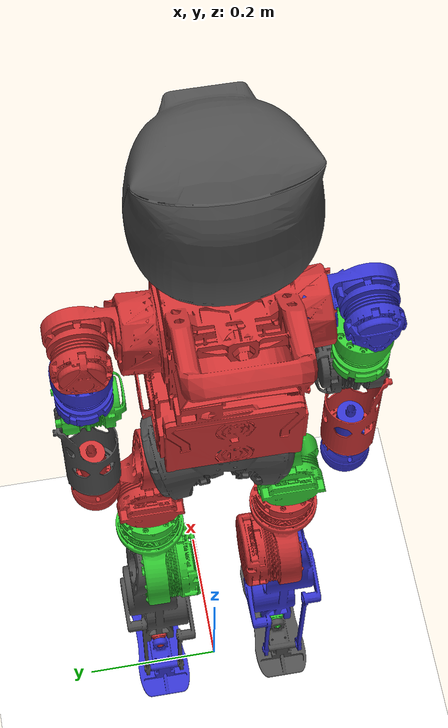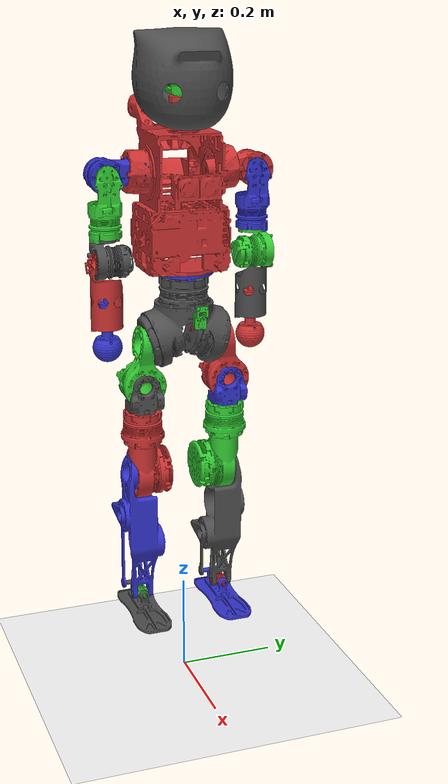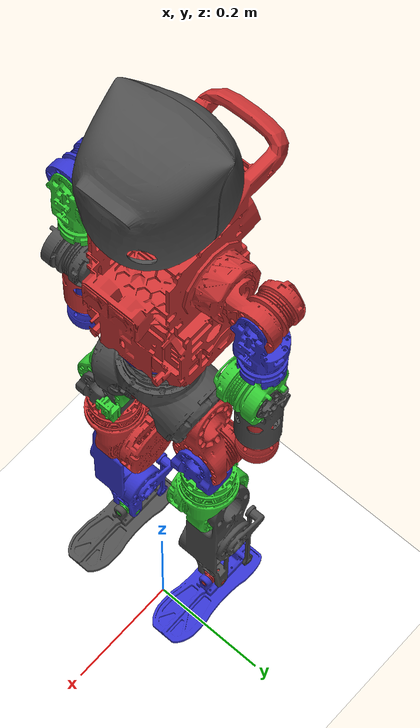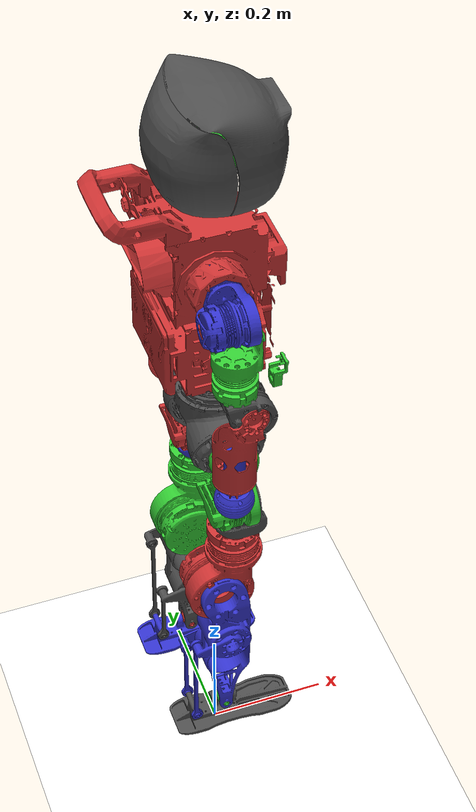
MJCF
<mujoco model="GR3Mini">
    <compiler angle="radian" meshdir="../meshes" autolimits="true"/>

    <default>
        <default class="GR3Mini">
            <geom group="2" type="mesh" contype="0" conaffinity="0"/>
            <joint type="hinge" armature="0.01" damping="0.01" frictionloss="0.01"/>

            <default class="collision">
                <geom group="3" rgba="0.7 0.7 0.7 0.5" contype="1" conaffinity="1"/>
            </default>

            <default class="motor_140E">
                <motor ctrllimited="true" ctrlrange="-140 140" gear="1"/>
            </default>
            <default class="motor_110E">
                <motor ctrllimited="true" ctrlrange="-110 110" gear="1"/>
            </default>
            <default class="motor_42E">
                <motor ctrllimited="true" ctrlrange="-42 42" gear="1"/>
            </default>
            <default class="motor_28E">
                <motor ctrllimited="true" ctrlrange="-28.5 28.5" gear="1"/>
            </default>
            <default class="motor_11E">
                <motor ctrllimited="true" ctrlrange="-11 11" gear="1"/>
            </default>
        </default>
    </default>

    <asset>
        <texture type="skybox" builtin="gradient" rgb1=".4 .5 .6" rgb2="0 0 0" width="800" height="800"/>
        <texture type="2d" name="groundplane" builtin="checker" mark="edge" rgb1="1 1 1" rgb2="1 1 1" markrgb="0 0 0" width="300" height="300"/>
        <material name="groundplane" texture="groundplane" texuniform="true" texrepeat="5 5" reflectance="0"/>

        <material name="base_material" rgba="0.3 0.3 0.3 1.0"/>
        <material name="link_material" rgba="0.8 0.2 0.2 1.0"/>
        <material name="blue_material" rgba="0.2 0.2 0.8 1.0"/>
        <material name="green_material" rgba="0.2 0.8 0.2 1.0"/>

        <!-- base -->
        <mesh name="base_link" file="base_link.STL"/>
        <mesh name="imu_link" file="imu_link.STL"/>

        <!-- left leg -->
        <mesh name="left_thigh_pitch_link" file="left_thigh_pitch_link.STL"/>
        <mesh name="left_thigh_roll_link" file="left_thigh_roll_link.STL"/>
        <mesh name="left_thigh_yaw_link" file="left_thigh_yaw_link.STL"/>
        <mesh name="left_shank_pitch_link" file="left_shank_pitch_link.STL"/>
        <mesh name="left_foot_pitch_link" file="left_foot_pitch_link.STL"/>
        <mesh name="left_foot_roll_link" file="left_foot_roll_link.STL"/>

        <!-- right leg -->
        <mesh name="right_thigh_pitch_link" file="right_thigh_pitch_link.STL"/>
        <mesh name="right_thigh_roll_link" file="right_thigh_roll_link.STL"/>
        <mesh name="right_thigh_yaw_link" file="right_thigh_yaw_link.STL"/>
        <mesh name="right_shank_pitch_link" file="right_shank_pitch_link.STL"/>
        <mesh name="right_foot_pitch_link" file="right_foot_pitch_link.STL"/>
        <mesh name="right_foot_roll_link" file="right_foot_roll_link.STL"/>

        <!-- waist -->
        <mesh name="waist_yaw_link" file="waist_yaw_link.STL"/>
        <mesh name="torso_link" file="torso_link.STL"/>

        <!-- left arm -->
        <mesh name="left_upper_arm_pitch_link" file="left_upper_arm_pitch_link.STL"/>
        <mesh name="left_upper_arm_roll_link" file="left_upper_arm_roll_link.STL"/>
        <mesh name="left_upper_arm_yaw_link" file="left_upper_arm_yaw_link.STL"/>
        <mesh name="left_lower_arm_pitch_link" file="left_lower_arm_pitch_link.STL"/>
        <mesh name="left_hand_yaw_link" file="left_hand_yaw_link.STL"/>

        <!-- right arm -->
        <mesh name="right_upper_arm_pitch_link" file="right_upper_arm_pitch_link.STL"/>
        <mesh name="right_upper_arm_roll_link" file="right_upper_arm_roll_link.STL"/>
        <mesh name="right_upper_arm_yaw_link" file="right_upper_arm_yaw_link.STL"/>
        <mesh name="right_lower_arm_pitch_link" file="right_lower_arm_pitch_link.STL"/>
        <mesh name="right_hand_yaw_link" file="left_hand_yaw_link.STL"/>

        <!-- head -->
        <mesh name="head_yaw_link" file="head_yaw_link.STL"/>
        <mesh name="head_pitch_link" file="head_pitch_link.STL"/>
    </asset>

    <worldbody>
        <body name="base_link" pos="0 0 0.75">
            <freejoint name="base_free_joint"/>
            <inertial pos="-0.00025881 3.252e-05 0.03609784" mass="4.046196"
                      fullinertia="0.01261734 0.00792008 0.00717244 0.0 6.264e-05 6.85e-06"/>
            <geom type="mesh" mesh="base_link" material="base_material"/>
            <geom class="collision" type="cylinder" size="0.065 0.075" pos="0 0 0" quat="0.707388 0.706825 0 0"/>

            <body name="imu_link" pos="0.0509 0.0 0.0337">
                <inertial pos="0 0 0" mass="0.028326"
                          fullinertia="7.64e-06 7.32e-06 2.83e-06 0.0 -1.91e-06 0.0"/>
                <geom type="mesh" mesh="imu_link" material="green_material"/>
                <!-- site for sensor attachment -->
                <site name="imu_sensor" pos="0 0 0" size="0.005" rgba="1 0 0 0.3"/>
            </body>

            <body name="left_thigh_pitch_link" pos="0 0.0740341 0.000258819">
                <inertial pos="-0.00620824 0.00539885 -0.04989732" mass="1.236357"
                          fullinertia="0.00293496 0.00284595 0.00062047 8.096e-05 -0.00032761 0.00068928"/>
                <joint name="left_hip_pitch_joint" axis="0 0.96592582 -0.25881904" range="-2.4435 2.4435"
                       actuatorfrcrange="-140 140" armature="0.126"/>
                <geom type="mesh" mesh="left_thigh_pitch_link" material="link_material"/>

                <body name="left_thigh_roll_link" pos="0.0179 0.0159659 -0.0902588">
                    <inertial pos="-0.01386621 2.33e-06 -0.03848515" mass="0.772557"
                              fullinertia="0.00112346 0.0011423 0.00021285 1e-08 -5.587e-05 1.1e-07"/>
                    <joint name="left_hip_roll_joint" axis="1 0 0" range="-0.5236 1.5708"
                           actuatorfrcrange="-42 42" armature="0.042"/>
                    <geom type="mesh" mesh="left_thigh_roll_link" material="blue_material"/>

                    <body name="left_thigh_yaw_link" pos="-0.0179 0 -0.0626">
                        <inertial pos="-0.01404437 -0.01327506 -0.10186977" mass="2.024383"
                                  fullinertia="0.00520231 0.00530163 0.00110248 -0.00023643 -0.00094483 -0.00099198"/>
                        <joint name="left_hip_yaw_joint" axis="0 0 1" range="-1.9199 1.9199"
                               actuatorfrcrange="-42 42" armature="0.042"/>
                        <geom type="mesh" mesh="left_thigh_yaw_link" material="green_material"/>
                        <geom class="collision" type="cylinder" size="0.045 0.08" pos="0 0 -0.012"/>

                        <body name="left_shank_pitch_link" pos="-0.0224 0.011 -0.1374">
                            <inertial pos="0.0018604938 -0.0099058451 -0.10597037" mass="2.626566"
                                      fullinertia="0.01353608 0.01348493 0.001520942 -1.151606e-05 -0.0002832254 -0.0006993641"/>
                            <joint name="left_knee_pitch_joint" axis="0 1 0" range="0.0 2.1817"
                                   actuatorfrcrange="-140 140" armature="0.126"/>
                            <geom type="mesh" mesh="left_shank_pitch_link" material="base_material"/>
                            <geom class="collision" type="cylinder" size="0.06 0.1" pos="0 0 -0.16"/>

                            <body name="left_foot_pitch_link" pos="0.005 -0.011 -0.28">
                                <inertial pos="-0.0002165298 0.0 0.0" mass="0.0794508"
                                          fullinertia="6.89e-06 6.94e-06 9.64e-06 0.0 0.0 0.0"/>
                                <joint name="left_ankle_pitch_joint" axis="0 1 0" range="-0.8727 0.5236"
                                       actuatorfrcrange="-28.5 28.5" armature="0.4"/>
                                <geom type="mesh" mesh="left_foot_pitch_link" material="link_material"/>

                                <body name="left_foot_roll_link" pos="0 0 0">
                                    <inertial pos="0.0073267937 7.33e-07 -0.0314" mass="0.44689183"
                                              fullinertia="0.000265 0.00141 0.00157 -1.57e-08 5.57e-05 2.2301642e-08"/>
                                    <joint name="left_ankle_roll_joint" axis="1 0 0" range="-0.3491 0.3491"
                                           actuatorfrcrange="-28.5 28.5" armature="0.06"/>
                                    <geom type="mesh" mesh="left_foot_roll_link" material="blue_material"/>
                                    <geom class="collision" type="box" size="0.1025 0.04 0.005" pos="0.016 0 -0.032"/>

                                    <!-- left foot forward link (added for toe positioning) -->
                                    <body name="left_foot_forward_link" pos="0.1 0 -0.03">
                                        <inertial pos="0 0 0" mass="0.0001" diaginertia="0.000001 0.000001 0.000001"/>
                                    </body>
                                </body>
                            </body>
                        </body>
                    </body>
                </body>
            </body>

            <body name="right_thigh_pitch_link" pos="0 -0.0740341 0.000258819">
                <inertial pos="-0.00618797 -0.00536124 -0.04993113" mass="1.236246"
                          fullinertia="0.00293035 0.00284191 0.00062048 -8.113e-05 -0.00032868 -0.00068779"/>
                <joint name="right_hip_pitch_joint" axis="0 0.96592582 0.25881904" range="-2.4435 2.4435"
                       actuatorfrcrange="-140 140" armature="0.126"/>
                <geom type="mesh" mesh="right_thigh_pitch_link" material="green_material"/>

                <body name="right_thigh_roll_link" pos="0.0179 -0.0159659 -0.0902588">
                    <inertial pos="-0.01386283 -4.8e-07 -0.03848407" mass="0.772557"
                              fullinertia="0.00112352 0.0011424 0.00021288 0.0 -5.583e-05 -1.6e-07"/>
                    <joint name="right_hip_roll_joint" axis="1 0 0" range="-1.5708 0.5236"
                           actuatorfrcrange="-42 42" armature="0.042"/>
                    <geom type="mesh" mesh="right_thigh_roll_link" material="base_material"/>

                    <body name="right_thigh_yaw_link" pos="-0.0179 0 -0.0626">
                        <inertial pos="-0.01390343 0.01326763 -0.10187025" mass="2.024383"
                                  fullinertia="0.0052027 0.00529823 0.00109962 0.00023342 -0.00093746 0.0009936"/>
                        <joint name="right_hip_yaw_joint" axis="0 0 1" range="-1.9199 1.9199"
                               actuatorfrcrange="-42 42" armature="0.042"/>
                        <geom type="mesh" mesh="right_thigh_yaw_link" material="link_material"/>
                        <geom class="collision" type="cylinder" size="0.045 0.08" pos="0 0 -0.012"/>

                        <body name="right_shank_pitch_link" pos="-0.0224 -0.011 -0.1374">
                            <inertial pos="0.0017812201 0.009902356 -0.10608404" mass="2.6269445"
                                      fullinertia="0.01353337 0.01349193 0.001531369 1.104373e-05 -0.000294825 0.0007007217"/>
                            <joint name="right_knee_pitch_joint" axis="0 1 0" range="0.0 2.1817"
                                   actuatorfrcrange="-140 140" armature="0.126"/>
                            <geom type="mesh" mesh="right_shank_pitch_link" material="blue_material"/>
                            <geom class="collision" type="cylinder" size="0.06 0.1" pos="0 0 -0.16"/>

                            <body name="right_foot_pitch_link" pos="0.005 0.011 -0.28">
                                <inertial pos="-0.0002165298 0.0 0.0" mass="0.0794508"
                                          fullinertia="6.89e-06 6.94e-06 9.64e-06 0.0 0.0 0.0"/>
                                <joint name="right_ankle_pitch_joint" axis="0 1 0" range="-0.8727 0.5236"
                                       actuatorfrcrange="-28.5 28.5" armature="0.4"/>
                                <geom type="mesh" mesh="right_foot_pitch_link" material="green_material"/>

                                <body name="right_foot_roll_link" pos="0 0 0">
                                    <inertial pos="0.0073267937 7.33e-07 -0.0314" mass="0.44689183"
                                              fullinertia="0.000265 0.00141 0.00157 -1.57e-08 5.57e-05 2.2301642e-08"/>
                                    <joint name="right_ankle_roll_joint" axis="1 0 0" range="-0.3491 0.3491"
                                           actuatorfrcrange="-28.5 28.5" armature="0.06"/>
                                    <geom type="mesh" mesh="right_foot_roll_link" material="base_material"/>
                                    <geom class="collision" type="box" size="0.1025 0.04 0.005" pos="0.016 0 -0.032"/>

                                    <!-- right foot forward link (added for toe positioning) -->
                                    <body name="right_foot_forward_link" pos="0.1 0 -0.03">
                                        <inertial pos="0 0 0" mass="0.0001" diaginertia="0.000001 0.000001 0.000001"/>
                                    </body>
                                </body>
                            </body>
                        </body>
                    </body>
                </body>
            </body>

            <body name="waist_yaw_link" pos="0 0 0.1295">
                <inertial pos="0.00053102 2.9e-06 -0.00751643" mass="0.594111"
                          fullinertia="0.00025842 0.00026254 0.00035627 -9.4e-07 -4.25e-06 3.5e-07"/>
                <joint name="waist_yaw_joint" axis="0 0 1" range="-2.2689 2.2689"
                       actuatorfrcrange="-140 140" armature="0.126" damping="0.01" frictionloss="0.01"/>
                <geom type="mesh" mesh="waist_yaw_link" material="blue_material"/>

                <body name="torso_link" pos="0 0 0">
                    <inertial pos="-0.02085448 -0.00049402 0.15982926" mass="9.423667"
                              fullinertia="0.10112876 0.09959386 0.0447625 6.959e-05 0.00668924 -0.00042"/>
                    <geom type="mesh" mesh="torso_link" material="link_material"/>
                    <geom class="collision" type="box" size="0.1 0.075 0.125" pos="0 0 0.15"/>

                    <body name="head_yaw_link" pos="0 0 0.36145">
                        <inertial pos="-0.00010204 -0.00543066 0.02418705" mass="0.42577152"
                                  fullinertia="0.00021315 0.00020842 4.48e-05 1.7e-07 6.1e-07 1.2548422e-05"/>
                        <joint name="head_yaw_joint" axis="0 0 1" range="-1.3963 1.3963"
                               actuatorfrcrange="-11 11" armature="0.073"/>
                        <geom type="mesh" mesh="head_yaw_link" material="green_material"/>

                        <body name="head_pitch_link" pos="0 0 0.035">
                            <inertial pos="-0.00153501 -0.00202312 0.00428061" mass="0.75056053"
                                      fullinertia="0.00269896 0.00254073 0.00293053 -1.247e-05 0.00010617 -5.74e-06"/>
                            <joint name="head_pitch_joint" axis="0 1 0" range="-0.5236 0.1745"
                                   actuatorfrcrange="-11 11" armature="0.073"/>
                            <geom type="mesh" mesh="head_pitch_link" material="base_material"/>
                            <geom class="collision" type="sphere" size="0.09"/>
                        </body>
                    </body>

                    <body name="left_upper_arm_pitch_link" pos="-0.023 0.105 0.211686">
                        <inertial pos="-0.006436524 0.02428029 -0.002319987" mass="0.830095"
                                  fullinertia="0.001417386 0.0005912324 0.00145768 0.0001533356 -3.919983e-05 2.845684e-05"/>
                        <joint name="left_shoulder_pitch_joint" axis="0 0.996194698 0.0871557427" range="-2.9671 2.9671"
                               actuatorfrcrange="-42 42" armature="0.042"/>
                        <geom type="mesh" mesh="left_upper_arm_pitch_link" material="link_material"/>

                        <body name="left_upper_arm_roll_link" pos="0.0175 0.0497847 -0.0056826">
                            <inertial pos="-0.01027972 0.002427561 -0.05906018" mass="0.8124"
                                      fullinertia="0.001660087 0.001704797 0.0005258696 -1.886985e-05 -0.0001392357 -3.224588e-05"/>
                            <joint name="left_shoulder_roll_joint" axis="1 0 0" range="-0.3491 3.0543"
                                   actuatorfrcrange="-28.5 28.5" armature="0.02"/>
                            <geom type="mesh" mesh="left_upper_arm_roll_link" material="blue_material"/>
                            <geom class="collision" type="cylinder" size="0.035 0.04" pos="-0.028 0 0" quat="0.707388 0 0.706825 0"/>

                            <body name="left_upper_arm_yaw_link" pos="-0.0175 0 -0.121">
                                <inertial pos="0.01360978 -0.005400983 -0.02843547" mass="0.748899"
                                          fullinertia="0.0008166647 0.0008114153 0.0005188584 4.411919e-05 0.0001171476 -6.114586e-05"/>
                                <joint name="left_shoulder_yaw_joint" axis="0 0 1" range="-1.8326 1.8326"
                                       actuatorfrcrange="-28.5 28.5" armature="0.02"/>
                                <geom type="mesh" mesh="left_upper_arm_yaw_link" material="green_material"/>
                                <geom class="collision" type="cylinder" size="0.038 0.04" pos="0 0 0.03"/>
                                <geom class="collision" type="cylinder" size="0.03 0.04" pos="0.021 0 -0.045" quat="0.707388 0.706825 0 0"/>

                                <body name="left_lower_arm_pitch_link" pos="0.02 0.022 -0.0453">
                                    <inertial pos="-0.01476491 -0.01429389 -0.07640413" mass="0.6527526"
                                              fullinertia="0.002854982 0.002847577 0.0003532114 -3.295249e-05 -0.000264731 -0.0003867991"/>
                                    <joint name="left_elbow_pitch_joint" axis="0 1 0" range="-2.4435 0.1396"
                                           actuatorfrcrange="-28.5 28.5" armature="0.02"/>
                                    <geom type="mesh" mesh="left_lower_arm_pitch_link" material="base_material"/>
                                    <geom class="collision" type="cylinder" size="0.034 0.045" pos="-0.02 -0.022 -0.1"/>

                                    <body name="left_hand_yaw_link" pos="-0.02 -0.022 -0.135">
                                        <inertial pos="3.830557e-05 -7.381799e-06 -0.01957051" mass="0.17092179"
                                                  fullinertia="0.000281082 0.0002812405 5.26478e-05 -8.37085e-09 1.239729e-08 -2.177791e-09"/>
                                        <joint name="left_wrist_yaw_joint" axis="0 0 1" range="-1.4835 1.4835"
                                               actuatorfrcrange="-11 11" armature="0.073"/>
                                        <geom type="mesh" mesh="left_hand_yaw_link" material="link_material"/>
                                        <geom class="collision" type="sphere" size="0.025" pos="0 0 -0.05"/>
                                    </body>
                                </body>
                            </body>
                        </body>
                    </body>

                    <body name="right_upper_arm_pitch_link" pos="-0.023 -0.105 0.211686">
                        <inertial pos="-0.006436494 -0.02458484 -0.005801023" mass="0.83009471"
                                  fullinertia="0.001439579 0.0006048147 0.001466291 -0.0001481837 1.969203e-05 -7.826178e-05"/>
                        <joint name="right_shoulder_pitch_joint" axis="0 0.996194698 -0.0871557427" range="-2.9671 2.9671"
                               actuatorfrcrange="-42 42" armature="0.042"/>
                        <geom type="mesh" mesh="right_upper_arm_pitch_link" material="blue_material"/>

                        <body name="right_upper_arm_roll_link" pos="0.0175 -0.0497847 -0.0056826">
                            <inertial pos="-0.01027972 1.666163e-05 -0.05624614" mass="0.81235659"
                                      fullinertia="0.001928465 0.001985178 0.0005138669 -9.594909e-06 -0.000162744 9.212561e-06"/>
                            <joint name="right_shoulder_roll_joint" axis="1 0 0" range="-3.0543 0.3491"
                                   actuatorfrcrange="-28.5 28.5" armature="0.02"/>
                            <geom type="mesh" mesh="right_upper_arm_roll_link" material="green_material"/>
                            <geom class="collision" type="cylinder" size="0.035 0.04" pos="-0.028 0 0" quat="0.707388 0 0.706825 0"/>

                            <body name="right_upper_arm_yaw_link" pos="-0.0175 0 -0.121">
                                <inertial pos="0.01696406 0.003205422 -0.03037206" mass="0.74889902"
                                          fullinertia="0.0008559406 0.000881203 0.0005776724 7.274391e-06 0.0001517994 7.693816e-05"/>
                                <joint name="right_shoulder_yaw_joint" axis="0 0 1" range="-1.8326 1.8326"
                                       actuatorfrcrange="-28.5 28.5" armature="0.02"/>
                                <geom type="mesh" mesh="right_upper_arm_yaw_link" material="base_material"/>
                                <geom class="collision" type="cylinder" size="0.038 0.04" pos="0 0 0.03"/>
                                <geom class="collision" type="cylinder" size="0.03 0.04" pos="0.021 0 -0.045" quat="0.707388 0.706825 0 0"/>

                                <body name="right_lower_arm_pitch_link" pos="0.02 -0.022 -0.0453">
                                    <inertial pos="-0.0148426 0.0142933 -0.0765424" mass="0.6527526"
                                              fullinertia="0.002840579 0.002832245 0.00035225 3.237689e-05 -0.0002597023 0.0003858275"/>
                                    <joint name="right_elbow_pitch_joint" axis="0 1 0" range="-2.4435 0.1396"
                                           actuatorfrcrange="-28.5 28.5" armature="0.02"/>
                                    <geom type="mesh" mesh="right_lower_arm_pitch_link" material="link_material"/>
                                    <geom class="collision" type="cylinder" size="0.034 0.045" pos="-0.02 0.022 -0.1"/>

                                    <body name="right_hand_yaw_link" pos="-0.02 0.022 -0.135">
                                        <inertial pos="3.829063e-05 6.613532e-06 -0.02661717" mass="0.17177182"
                                                  fullinertia="0.0002158433 0.0002160015 5.294387e-05 7.228377e-09 -1.145821e-07 -1.96677e-08"/>
                                        <joint name="right_wrist_yaw_joint" axis="0 0 1" range="-1.4835 1.4835"
                                               actuatorfrcrange="-11 11" armature="0.073"/>
                                        <geom type="mesh" mesh="right_hand_yaw_link" material="blue_material"/>
                                        <geom class="collision" type="sphere" size="0.025" pos="0 0 -0.05"/>
                                    </body>
                                </body>
                            </body>
                        </body>
                    </body>
                </body>
            </body>
        </body>
    </worldbody>

    <actuator>
        <motor class="motor_140E" name="waist_yaw" joint="waist_yaw_joint"/>

        <motor class="motor_11E" name="head_yaw" joint="head_yaw_joint"/>
        <motor class="motor_11E" name="head_pitch" joint="head_pitch_joint"/>

        <motor class="motor_140E" name="left_hip_pitch" joint="left_hip_pitch_joint"/>
        <motor class="motor_42E" name="left_hip_roll" joint="left_hip_roll_joint"/>
        <motor class="motor_42E" name="left_hip_yaw" joint="left_hip_yaw_joint"/>
        <motor class="motor_140E" name="left_knee_pitch" joint="left_knee_pitch_joint"/>
        <motor class="motor_28E" name="left_ankle_pitch" joint="left_ankle_pitch_joint"/>
        <motor class="motor_28E" name="left_ankle_roll" joint="left_ankle_roll_joint"/>

        <motor class="motor_140E" name="right_hip_pitch" joint="right_hip_pitch_joint"/>
        <motor class="motor_42E" name="right_hip_roll" joint="right_hip_roll_joint"/>
        <motor class="motor_42E" name="right_hip_yaw" joint="right_hip_yaw_joint"/>
        <motor class="motor_140E" name="right_knee_pitch" joint="right_knee_pitch_joint"/>
        <motor class="motor_28E" name="right_ankle_pitch" joint="right_ankle_pitch_joint"/>
        <motor class="motor_28E" name="right_ankle_roll" joint="right_ankle_roll_joint"/>

        <motor class="motor_42E" name="left_shoulder_pitch" joint="left_shoulder_pitch_joint"/>
        <motor class="motor_28E" name="left_shoulder_roll" joint="left_shoulder_roll_joint"/>
        <motor class="motor_28E" name="left_shoulder_yaw" joint="left_shoulder_yaw_joint"/>
        <motor class="motor_28E" name="left_elbow_pitch" joint="left_elbow_pitch_joint"/>
        <motor class="motor_11E" name="left_wrist_yaw" joint="left_wrist_yaw_joint"/>

        <motor class="motor_42E" name="right_shoulder_pitch" joint="right_shoulder_pitch_joint"/>
        <motor class="motor_28E" name="right_shoulder_roll" joint="right_shoulder_roll_joint"/>
        <motor class="motor_28E" name="right_shoulder_yaw" joint="right_shoulder_yaw_joint"/>
        <motor class="motor_28E" name="right_elbow_pitch" joint="right_elbow_pitch_joint"/>
        <motor class="motor_11E" name="right_wrist_yaw" joint="right_wrist_yaw_joint"/>
    </actuator>

    <sensor>
        <framequat name="orientation" objtype="site" objname="imu_sensor"/>
        <gyro name="angular-velocity" site="imu_sensor"/>
        <accelerometer name="linear-acceleration" site="imu_sensor"/>
    </sensor>

    <worldbody>
        <geom name="floor" size="0 0 0.01" type="plane" material="groundplane" contype="1" conaffinity="0" priority="1" friction="0.8 0.02 0.01" condim="3"/>
        <light diffuse=".5 .5 .5" pos="0 0 5" dir="0 0 -1" castshadow="true"/>
    </worldbody>

    <keyframe>
        <key name="home"
             qpos="0 0 0.85 1 0 0 0
                   0 0 0 0 0 0
                   0 0 0 0 0 0
                   0
                   0 0
                   0 0 0 0 0
                   0 0 0 0 0"/>
    </keyframe>
</mujoco>
